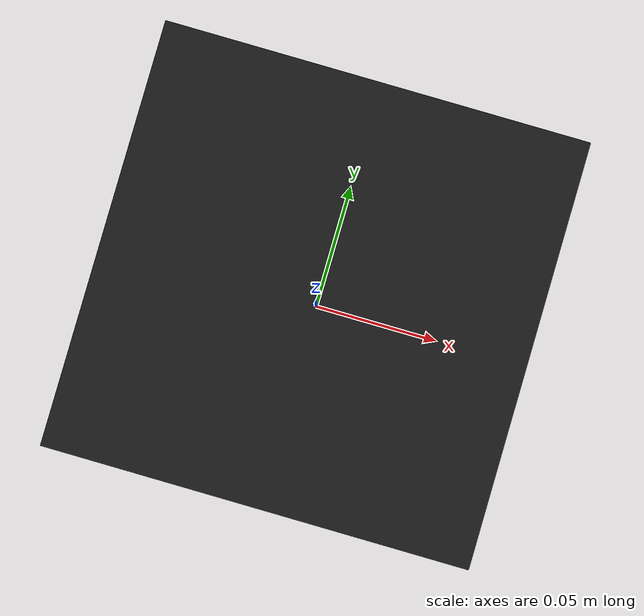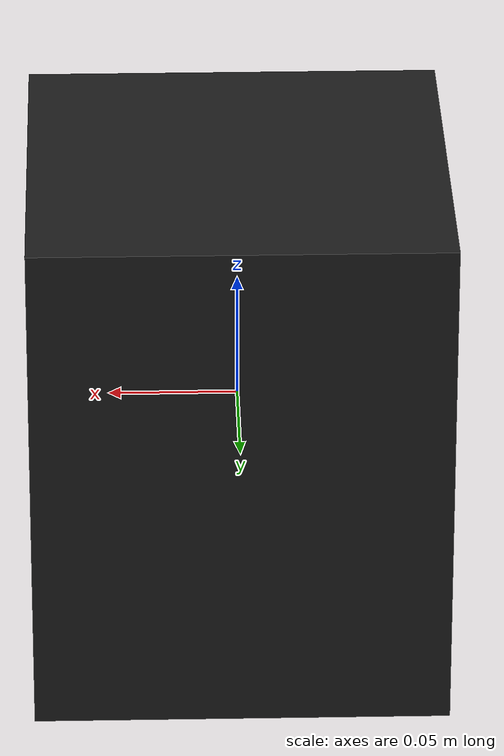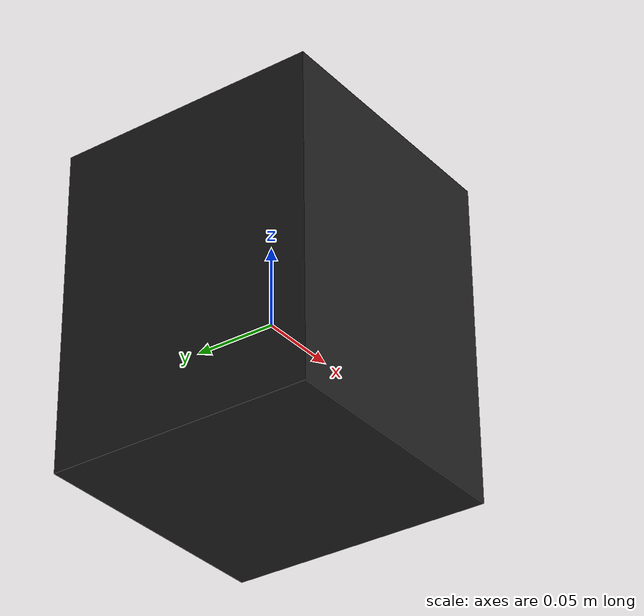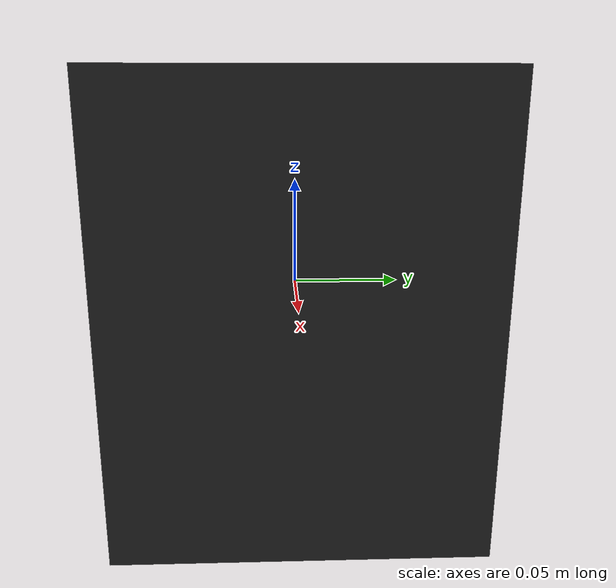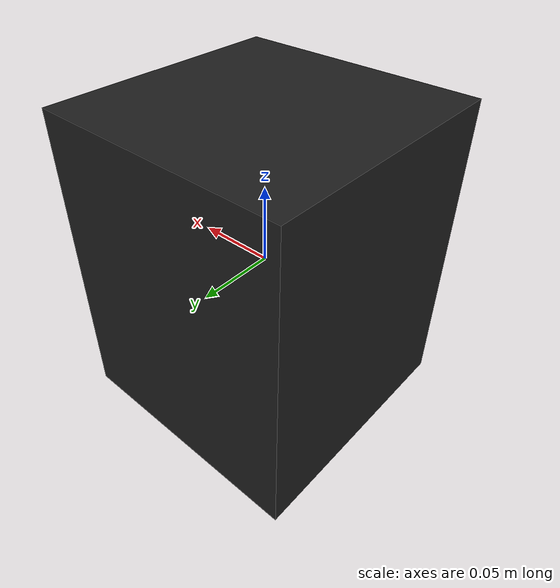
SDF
<?xml version="1.0" ?>
<sdf version="1.9">
  <model name="security_camera_unit">
    <static>true</static>
    <link name="base_link">
      <collision name="base_collision">
        <geometry>
          <box>
            <size>0.16 0.16 0.20</size>
          </box>
        </geometry>
      </collision>
      <visual name="base_visual">
        <geometry>
          <box>
            <size>0.16 0.16 0.20</size>
          </box>
        </geometry>
        <material>
          <ambient>0.08 0.08 0.08 1</ambient>
          <diffuse>0.12 0.12 0.12 1</diffuse>
          <specular>0.25 0.25 0.25 1</specular>
        </material>
      </visual>

      <light name="camera_spotlight" type="spot">
        <pose>0.10 0 0.10 0 0 0</pose>
        <cast_shadows>true</cast_shadows>
        <diffuse>0.95 0.95 0.90 1</diffuse>
        <specular>0.10 0.10 0.10 1</specular>
        <attenuation>
          <range>8.0</range>
          <constant>0.9</constant>
          <linear>0.05</linear>
          <quadratic>0.01</quadratic>
        </attenuation>
        <direction>1 0 -0.2</direction>
        <spot>
          <inner_angle>0.25</inner_angle>
          <outer_angle>0.50</outer_angle>
          <falloff>0.8</falloff>
        </spot>
      </light>
    </link>
  </model>
</sdf>
